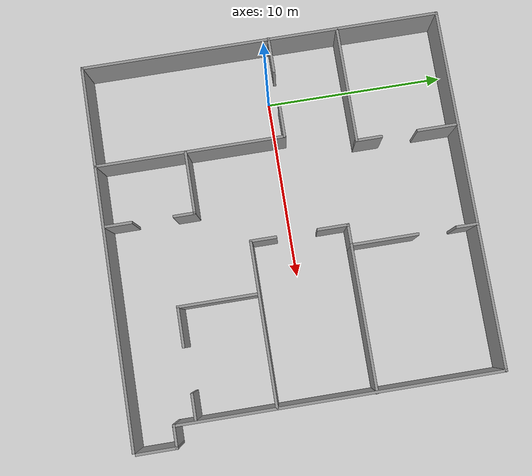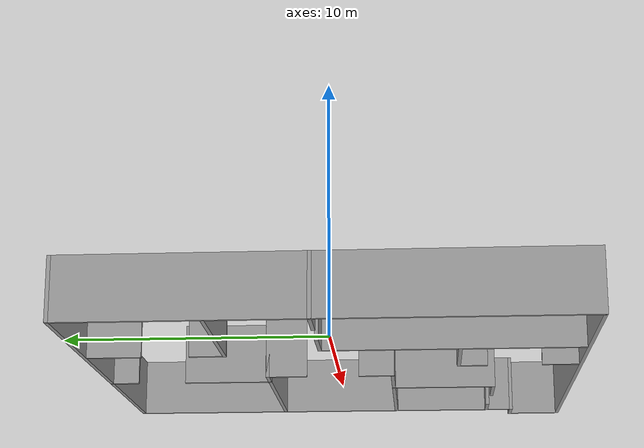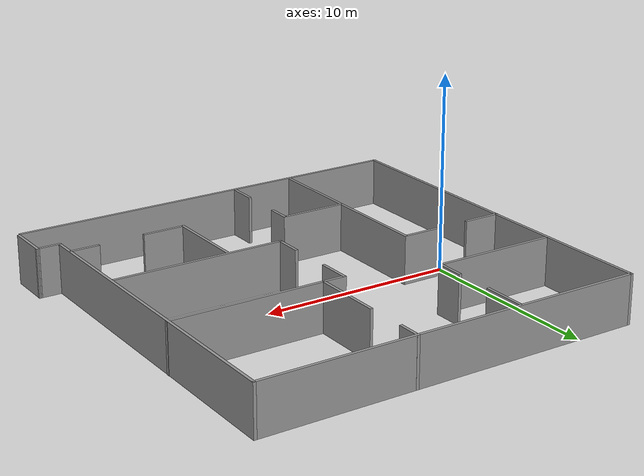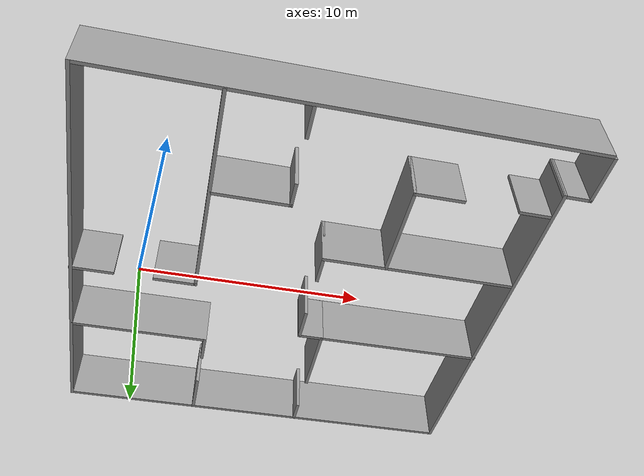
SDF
<?xml version='1.0'?>
<sdf version='1.7'>
  <model name='complex_maze'>
    <pose>7.45617 0.045947 0 0 -0 0</pose>
    <link name='Wall_0'>
      <collision name='Wall_0_Collision'>
        <geometry>
          <box>
            <size>20 0.15 2.5</size>
          </box>
        </geometry>
        <pose>0 0 1.25 0 -0 0</pose>
      </collision>
      <visual name='Wall_0_Visual'>
        <pose>0 0 1.25 0 -0 0</pose>
        <geometry>
          <box>
            <size>20 0.15 2.5</size>
          </box>
        </geometry>
        <material>
          <script>
            <uri>file://media/materials/scripts/gazebo.material</uri>
            <name>Gazebo/Grey</name>
          </script>
          <ambient>1 1 1 1</ambient>
        </material>
        <meta>
          <layer>0</layer>
        </meta>
      </visual>
      <pose>-10.4862 -0.000947 0 0 -0 -1.5708</pose>
    </link>
    <link name='Wall_1'>
      <collision name='Wall_1_Collision'>
        <geometry>
          <box>
            <size>21 0.15 2.5</size>
          </box>
        </geometry>
        <pose>0 0 1.25 0 -0 0</pose>
      </collision>
      <visual name='Wall_1_Visual'>
        <pose>0 0 1.25 0 -0 0</pose>
        <geometry>
          <box>
            <size>21 0.15 2.5</size>
          </box>
        </geometry>
        <material>
          <script>
            <uri>file://media/materials/scripts/gazebo.material</uri>
            <name>Gazebo/Grey</name>
          </script>
          <ambient>1 1 1 1</ambient>
        </material>
        <meta>
          <layer>0</layer>
        </meta>
      </visual>
      <pose>-0.061168 -9.92595 0 0 -0 0</pose>
    </link>
    <link name='Wall_10'>
      <collision name='Wall_10_Collision'>
        <geometry>
          <box>
            <size>1.5 0.15 2.5</size>
          </box>
        </geometry>
        <pose>0 0 1.25 0 -0 0</pose>
      </collision>
      <visual name='Wall_10_Visual'>
        <pose>0 0 1.25 0 -0 0</pose>
        <geometry>
          <box>
            <size>1.5 0.15 2.5</size>
          </box>
        </geometry>
        <material>
          <script>
            <uri>file://media/materials/scripts/gazebo.material</uri>
            <name>Gazebo/Grey</name>
          </script>
          <ambient>1 1 1 1</ambient>
        </material>
        <meta>
          <layer>0</layer>
        </meta>
      </visual>
      <pose>-4.05692 4.9909 0 0 -0 1.5708</pose>
    </link>
    <link name='Wall_12'>
      <collision name='Wall_12_Collision'>
        <geometry>
          <box>
            <size>2.25 0.15 2.5</size>
          </box>
        </geometry>
        <pose>0 0 1.25 0 -0 0</pose>
      </collision>
      <visual name='Wall_12_Visual'>
        <pose>0 0 1.25 0 -0 0</pose>
        <geometry>
          <box>
            <size>2.25 0.15 2.5</size>
          </box>
        </geometry>
        <material>
          <script>
            <uri>file://media/materials/scripts/gazebo.material</uri>
            <name>Gazebo/Grey</name>
          </script>
          <ambient>1 1 1 1</ambient>
        </material>
        <meta>
          <layer>0</layer>
        </meta>
      </visual>
      <pose>-4.0645 8.77688 0 0 -0 1.5708</pose>
    </link>
    <link name='Wall_14'>
      <collision name='Wall_14_Collision'>
        <geometry>
          <box>
            <size>2 0.15 2.5</size>
          </box>
        </geometry>
        <pose>0 0 1.25 0 -0 0</pose>
      </collision>
      <visual name='Wall_14_Visual'>
        <pose>0 0 1.25 0 -0 0</pose>
        <geometry>
          <box>
            <size>2 0.15 2.5</size>
          </box>
        </geometry>
        <material>
          <script>
            <uri>file://media/materials/scripts/gazebo.material</uri>
            <name>Gazebo/Grey</name>
          </script>
          <ambient>1 1 1 1</ambient>
        </material>
        <meta>
          <layer>0</layer>
        </meta>
      </visual>
      <pose>-9.57474 0.479505 0 0 -0 0</pose>
    </link>
    <link name='Wall_16'>
      <collision name='Wall_16_Collision'>
        <geometry>
          <box>
            <size>2 0.15 2.5</size>
          </box>
        </geometry>
        <pose>0 0 1.25 0 -0 0</pose>
      </collision>
      <visual name='Wall_16_Visual'>
        <pose>0 0 1.25 0 -0 0</pose>
        <geometry>
          <box>
            <size>2 0.15 2.5</size>
          </box>
        </geometry>
        <material>
          <script>
            <uri>file://media/materials/scripts/gazebo.material</uri>
            <name>Gazebo/Grey</name>
          </script>
          <ambient>1 1 1 1</ambient>
        </material>
        <meta>
          <layer>0</layer>
        </meta>
      </visual>
      <pose>-5.83864 0.479505 0 0 -0 0</pose>
    </link>
    <link name='Wall_17'>
      <collision name='Wall_17_Collision'>
        <geometry>
          <box>
            <size>10.5 0.15 2.5</size>
          </box>
        </geometry>
        <pose>0 0 1.25 0 -0 0</pose>
      </collision>
      <visual name='Wall_17_Visual'>
        <pose>0 0 1.25 0 -0 0</pose>
        <geometry>
          <box>
            <size>10.5 0.15 2.5</size>
          </box>
        </geometry>
        <material>
          <script>
            <uri>file://media/materials/scripts/gazebo.material</uri>
            <name>Gazebo/Grey</name>
          </script>
          <ambient>1 1 1 1</ambient>
        </material>
        <meta>
          <layer>0</layer>
        </meta>
      </visual>
      <pose>-4.91364 -4.6955 0 0 -0 -1.5708</pose>
    </link>
    <link name='Wall_20'>
      <collision name='Wall_20_Collision'>
        <geometry>
          <box>
            <size>1.25 0.15 2.5</size>
          </box>
        </geometry>
        <pose>0 0 1.25 0 -0 0</pose>
      </collision>
      <visual name='Wall_20_Visual'>
        <pose>0 0 1.25 0 -0 0</pose>
        <geometry>
          <box>
            <size>1.25 0.15 2.5</size>
          </box>
        </geometry>
        <material>
          <script>
            <uri>file://media/materials/scripts/gazebo.material</uri>
            <name>Gazebo/Grey</name>
          </script>
          <ambient>1 1 1 1</ambient>
        </material>
        <meta>
          <layer>0</layer>
        </meta>
      </visual>
      <pose>1.49992 9.37595 0 0 -0 -1.5708</pose>
    </link>
    <link name='Wall_22'>
      <collision name='Wall_22_Collision'>
        <geometry>
          <box>
            <size>3.75 0.15 2.5</size>
          </box>
        </geometry>
        <pose>0 0 1.25 0 -0 0</pose>
      </collision>
      <visual name='Wall_22_Visual'>
        <pose>0 0 1.25 0 -0 0</pose>
        <geometry>
          <box>
            <size>3.75 0.15 2.5</size>
          </box>
        </geometry>
        <material>
          <script>
            <uri>file://media/materials/scripts/gazebo.material</uri>
            <name>Gazebo/Grey</name>
          </script>
          <ambient>1 1 1 1</ambient>
        </material>
        <meta>
          <layer>0</layer>
        </meta>
      </visual>
      <pose>1.5355 4.85264 0 0 -0 -1.5708</pose>
    </link>
    <link name='Wall_23'>
      <collision name='Wall_23_Collision'>
        <geometry>
          <box>
            <size>8 0.15 2.5</size>
          </box>
        </geometry>
        <pose>0 0 1.25 0 -0 0</pose>
      </collision>
      <visual name='Wall_23_Visual'>
        <pose>0 0 1.25 0 -0 0</pose>
        <geometry>
          <box>
            <size>8 0.15 2.5</size>
          </box>
        </geometry>
        <material>
          <script>
            <uri>file://media/materials/scripts/gazebo.material</uri>
            <name>Gazebo/Grey</name>
          </script>
          <ambient>1 1 1 1</ambient>
        </material>
        <meta>
          <layer>0</layer>
        </meta>
      </visual>
      <pose>5.4605 3.05264 0 0 -0 0</pose>
    </link>
    <link name='Wall_25'>
      <collision name='Wall_25_Collision'>
        <geometry>
          <box>
            <size>1.25 0.15 2.5</size>
          </box>
        </geometry>
        <pose>0 0 1.25 0 -0 0</pose>
      </collision>
      <visual name='Wall_25_Visual'>
        <pose>0 0 1.25 0 -0 0</pose>
        <geometry>
          <box>
            <size>1.25 0.15 2.5</size>
          </box>
        </geometry>
        <material>
          <script>
            <uri>file://media/materials/scripts/gazebo.material</uri>
            <name>Gazebo/Grey</name>
          </script>
          <ambient>1 1 1 1</ambient>
        </material>
        <meta>
          <layer>0</layer>
        </meta>
      </visual>
      <pose>0.9855 3.05264 0 0 -0 3.14159</pose>
    </link>
    <link name='Wall_26'>
      <collision name='Wall_26_Collision'>
        <geometry>
          <box>
            <size>1.75 0.15 2.5</size>
          </box>
        </geometry>
        <pose>0 0 1.25 0 -0 0</pose>
      </collision>
      <visual name='Wall_26_Visual'>
        <pose>0 0 1.25 0 -0 0</pose>
        <geometry>
          <box>
            <size>1.75 0.15 2.5</size>
          </box>
        </geometry>
        <material>
          <script>
            <uri>file://media/materials/scripts/gazebo.material</uri>
            <name>Gazebo/Grey</name>
          </script>
          <ambient>1 1 1 1</ambient>
        </material>
        <meta>
          <layer>0</layer>
        </meta>
      </visual>
      <pose>0.435499 2.25264 0 0 -0 -1.5708</pose>
    </link>
    <link name='Wall_28'>
      <collision name='Wall_28_Collision'>
        <geometry>
          <box>
            <size>1.5 0.15 2.5</size>
          </box>
        </geometry>
        <pose>0 0 1.25 0 -0 0</pose>
      </collision>
      <visual name='Wall_28_Visual'>
        <pose>0 0 1.25 0 -0 0</pose>
        <geometry>
          <box>
            <size>1.5 0.15 2.5</size>
          </box>
        </geometry>
        <material>
          <script>
            <uri>file://media/materials/scripts/gazebo.material</uri>
            <name>Gazebo/Grey</name>
          </script>
          <ambient>1 1 1 1</ambient>
        </material>
        <meta>
          <layer>0</layer>
        </meta>
      </visual>
      <pose>0.468117 -1.5652 0 0 -0 -1.5708</pose>
    </link>
    <link name='Wall_29'>
      <collision name='Wall_29_Collision'>
        <geometry>
          <box>
            <size>9 0.15 2.5</size>
          </box>
        </geometry>
        <pose>0 0 1.25 0 -0 0</pose>
      </collision>
      <visual name='Wall_29_Visual'>
        <pose>0 0 1.25 0 -0 0</pose>
        <geometry>
          <box>
            <size>9 0.15 2.5</size>
          </box>
        </geometry>
        <material>
          <script>
            <uri>file://media/materials/scripts/gazebo.material</uri>
            <name>Gazebo/Grey</name>
          </script>
          <ambient>1 1 1 1</ambient>
        </material>
        <meta>
          <layer>0</layer>
        </meta>
      </visual>
      <pose>4.89312 -2.2402 0 0 -0 0</pose>
    </link>
    <link name='Wall_3'>
      <collision name='Wall_3_Collision'>
        <geometry>
          <box>
            <size>20 0.15 2.5</size>
          </box>
        </geometry>
        <pose>0 0 1.25 0 -0 0</pose>
      </collision>
      <visual name='Wall_3_Visual'>
        <pose>0 0 1.25 0 -0 0</pose>
        <geometry>
          <box>
            <size>20 0.15 2.5</size>
          </box>
        </geometry>
        <material>
          <script>
            <uri>file://media/materials/scripts/gazebo.material</uri>
            <name>Gazebo/Grey</name>
          </script>
          <ambient>1 1 1 1</ambient>
        </material>
        <meta>
          <layer>0</layer>
        </meta>
      </visual>
      <pose>-0.561168 9.92405 0 0 -0 0</pose>
    </link>
    <link name='Wall_31'>
      <collision name='Wall_31_Collision'>
        <geometry>
          <box>
            <size>3.5 0.15 2.5</size>
          </box>
        </geometry>
        <pose>0 0 1.25 0 -0 0</pose>
      </collision>
      <visual name='Wall_31_Visual'>
        <pose>0 0 1.25 0 -0 0</pose>
        <geometry>
          <box>
            <size>3.5 0.15 2.5</size>
          </box>
        </geometry>
        <material>
          <script>
            <uri>file://media/materials/scripts/gazebo.material</uri>
            <name>Gazebo/Grey</name>
          </script>
          <ambient>1 1 1 1</ambient>
        </material>
        <meta>
          <layer>0</layer>
        </meta>
      </visual>
      <pose>-3.1938 -4.98183 0 0 -0 0</pose>
    </link>
    <link name='Wall_32'>
      <collision name='Wall_32_Collision'>
        <geometry>
          <box>
            <size>1.25 0.15 2.5</size>
          </box>
        </geometry>
        <pose>0 0 1.25 0 -0 0</pose>
      </collision>
      <visual name='Wall_32_Visual'>
        <pose>0 0 1.25 0 -0 0</pose>
        <geometry>
          <box>
            <size>1.25 0.15 2.5</size>
          </box>
        </geometry>
        <material>
          <script>
            <uri>file://media/materials/scripts/gazebo.material</uri>
            <name>Gazebo/Grey</name>
          </script>
          <ambient>1 1 1 1</ambient>
        </material>
        <meta>
          <layer>0</layer>
        </meta>
      </visual>
      <pose>-1.5188 -5.53183 0 0 -0 -1.5708</pose>
    </link>
    <link name='Wall_34'>
      <collision name='Wall_34_Collision'>
        <geometry>
          <box>
            <size>1.5 0.15 2.5</size>
          </box>
        </geometry>
        <pose>0 0 1.25 0 -0 0</pose>
      </collision>
      <visual name='Wall_34_Visual'>
        <pose>0 0 1.25 0 -0 0</pose>
        <geometry>
          <box>
            <size>1.5 0.15 2.5</size>
          </box>
        </geometry>
        <material>
          <script>
            <uri>file://media/materials/scripts/gazebo.material</uri>
            <name>Gazebo/Grey</name>
          </script>
          <ambient>1 1 1 1</ambient>
        </material>
        <meta>
          <layer>0</layer>
        </meta>
      </visual>
      <pose>-1.55991 -9.10804 0 0 -0 -1.5708</pose>
    </link>
    <link name='Wall_36'>
      <collision name='Wall_36_Collision'>
        <geometry>
          <box>
            <size>4.5 0.15 2.5</size>
          </box>
        </geometry>
        <pose>0 0 1.25 0 -0 0</pose>
      </collision>
      <visual name='Wall_36_Visual'>
        <pose>0 0 1.25 0 -0 0</pose>
        <geometry>
          <box>
            <size>4.5 0.15 2.5</size>
          </box>
        </geometry>
        <material>
          <script>
            <uri>file://media/materials/scripts/gazebo.material</uri>
            <name>Gazebo/Grey</name>
          </script>
          <ambient>1 1 1 1</ambient>
        </material>
        <meta>
          <layer>0</layer>
        </meta>
      </visual>
      <pose>3.31447 -4.41722 0 0 -0 -1.5708</pose>
    </link>
    <link name='Wall_38'>
      <collision name='Wall_38_Collision'>
        <geometry>
          <box>
            <size>2.25 0.15 2.5</size>
          </box>
        </geometry>
        <pose>0 0 1.25 0 -0 0</pose>
      </collision>
      <visual name='Wall_38_Visual'>
        <pose>0 0 1.25 0 -0 0</pose>
        <geometry>
          <box>
            <size>2.25 0.15 2.5</size>
          </box>
        </geometry>
        <material>
          <script>
            <uri>file://media/materials/scripts/gazebo.material</uri>
            <name>Gazebo/Grey</name>
          </script>
          <ambient>1 1 1 1</ambient>
        </material>
        <meta>
          <layer>0</layer>
        </meta>
      </visual>
      <pose>4.36447 -6.59222 0 0 -0 0</pose>
    </link>
    <link name='Wall_40'>
      <collision name='Wall_40_Collision'>
        <geometry>
          <box>
            <size>1.5 0.15 2.5</size>
          </box>
        </geometry>
        <pose>0 0 1.25 0 -0 0</pose>
      </collision>
      <visual name='Wall_40_Visual'>
        <pose>0 0 1.25 0 -0 0</pose>
        <geometry>
          <box>
            <size>1.5 0.15 2.5</size>
          </box>
        </geometry>
        <material>
          <script>
            <uri>file://media/materials/scripts/gazebo.material</uri>
            <name>Gazebo/Grey</name>
          </script>
          <ambient>1 1 1 1</ambient>
        </material>
        <meta>
          <layer>0</layer>
        </meta>
      </visual>
      <pose>8.6148 -6.51175 0 0 -0 0</pose>
    </link>
    <link name='Wall_5'>
      <collision name='Wall_5_Collision'>
        <geometry>
          <box>
            <size>17.75 0.15 2.5</size>
          </box>
        </geometry>
        <pose>0 0 1.25 0 -0 0</pose>
      </collision>
      <visual name='Wall_5_Visual'>
        <pose>0 0 1.25 0 -0 0</pose>
        <geometry>
          <box>
            <size>17.75 0.15 2.5</size>
          </box>
        </geometry>
        <material>
          <script>
            <uri>file://media/materials/scripts/gazebo.material</uri>
            <name>Gazebo/Grey</name>
          </script>
          <ambient>1 1 1 1</ambient>
        </material>
        <meta>
          <layer>0</layer>
        </meta>
      </visual>
      <pose>9.36383 1.12405 0 0 -0 -1.5708</pose>
    </link>
    <link name='Wall_6'>
      <collision name='Wall_6_Collision'>
        <geometry>
          <box>
            <size>1.28611 0.15 2.5</size>
          </box>
        </geometry>
        <pose>0 0 1.25 0 -0 0</pose>
      </collision>
      <visual name='Wall_6_Visual'>
        <pose>0 0 1.25 0 -0 0</pose>
        <geometry>
          <box>
            <size>1.28611 0.15 2.5</size>
          </box>
        </geometry>
        <material>
          <script>
            <uri>file://media/materials/scripts/gazebo.material</uri>
            <name>Gazebo/Grey</name>
          </script>
          <ambient>1 1 1 1</ambient>
        </material>
        <meta>
          <layer>0</layer>
        </meta>
      </visual>
      <pose>9.93162 -7.67547 0 0 -0 0.000831</pose>
    </link>
    <link name='Wall_7'>
      <collision name='Wall_7_Collision'>
        <geometry>
          <box>
            <size>2.25 0.15 2.5</size>
          </box>
        </geometry>
        <pose>0 0 1.25 0 -0 0</pose>
      </collision>
      <visual name='Wall_7_Visual'>
        <pose>0 0 1.25 0 -0 0</pose>
        <geometry>
          <box>
            <size>2.25 0.15 2.5</size>
          </box>
        </geometry>
        <material>
          <script>
            <uri>file://media/materials/scripts/gazebo.material</uri>
            <name>Gazebo/Grey</name>
          </script>
          <ambient>1 1 1 1</ambient>
        </material>
        <meta>
          <layer>0</layer>
        </meta>
      </visual>
      <pose>10.4994 -8.725 0 0 -0 -1.5708</pose>
    </link>
    <link name='Wall_9'>
      <collision name='Wall_9_Collision'>
        <geometry>
          <box>
            <size>6.5 0.15 2.5</size>
          </box>
        </geometry>
        <pose>0 0 1.25 0 -0 0</pose>
      </collision>
      <visual name='Wall_9_Visual'>
        <pose>0 0 1.25 0 -0 0</pose>
        <geometry>
          <box>
            <size>6.5 0.15 2.5</size>
          </box>
        </geometry>
        <material>
          <script>
            <uri>file://media/materials/scripts/gazebo.material</uri>
            <name>Gazebo/Grey</name>
          </script>
          <ambient>1 1 1 1</ambient>
        </material>
        <meta>
          <layer>0</layer>
        </meta>
      </visual>
      <pose>-7.23192 4.3159 0 0 -0 0</pose>
    </link>
    <static>1</static>
  </model>
</sdf>
